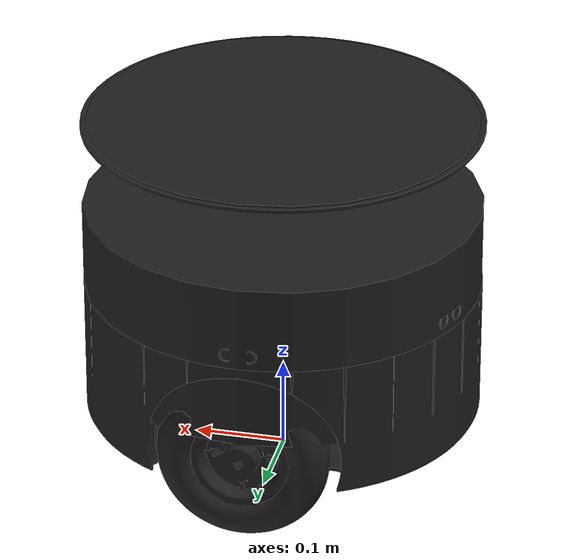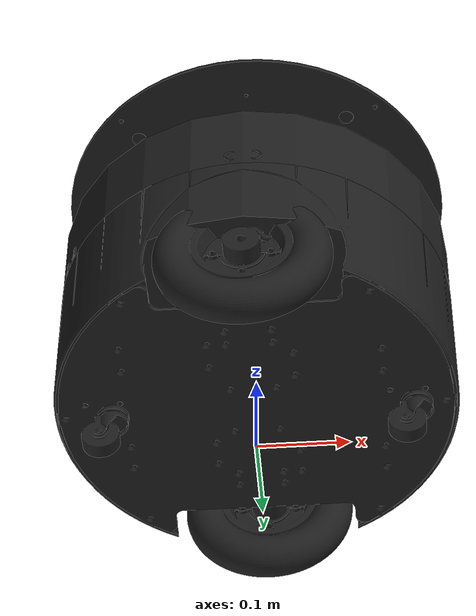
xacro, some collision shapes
<?xml version="1.0" ?>
<robot name="uvrobot_v3_restaurant" xmlns:xacro="http://ros.org/wiki/xacro">
  <xacro:include filename="$(find uvrobots_description)/urdf/uvrobot_v3.gazebo.xacro"/>

<!-- *** Link Definitions *** -->

  <!-- Base Footprint -->
  <link name="base_footprint"/>

  <!-- Base Link -->
  <joint name="base_joint" type="fixed">
    <parent link="base_footprint"/>
    <child link="base_link"/>
    <origin xyz="0.0 0.0 0.06" rpy="0 0 0"/>
  </joint>

  <link name="base_link">
    <inertial>
      <origin xyz="0 0 0" rpy="0 0 0"/>
      <mass value="1.28651"/>
      <inertia ixx="4.09876e-03" ixy="2.74202e-06" ixz="1.35022e-05"
               iyy="6.10042e-03" iyz="-5.46931e-06"
               izz="1.01978e-02" />
    </inertial>

    <collision>
      <origin xyz="0 0 0" rpy="0 0 0"/>
      <geometry>
        <cylinder radius="0.215" length="0.004"/>
      </geometry>
    </collision>

    <visual>
      <origin xyz="0 0 0" rpy="0 0 0"/>
      <geometry>
        <mesh filename="package://uvrobots_description/meshes/V3/Drivetrain_Plate.stl"  scale="0.001 0.001 0.001"/>
      </geometry>
      <material name="black"/>
    </visual>
  </link>

  <!-- Caster Back Wheel -->
  <joint name="caster_back_joint" type="fixed">
    <parent link="base_link"/>
    <child link="caster_back_link"/>
    <origin xyz="-0.165 0 -0.030" rpy="-1.5708 0 0"/>
  </joint>

  <link name="caster_back_link">
    <inertial>
      <origin xyz="0 0 0" />
      <mass value="0.09" />
      <inertia ixx="7.57929e-06" ixy="-1.2334e-13" ixz="-1.81974e-06"
               iyy="9.21232e-06" iyz="1.50542e-13"
               izz="4.83124e-06" />
    </inertial>

    <collision>
      <origin xyz="0 0 0" rpy="0 0 0"/>
      <geometry>
        <box size="0.059 0.059 0.059"/>
      </geometry>
    </collision>

    <visual>
      <origin xyz="0 0 0" rpy="0 0 0"/>
      <geometry>
        <mesh filename="package://uvrobots_description/meshes/V3/Castor_Wheel.stl"  scale="0.001 0.001 0.001"/>
      </geometry>
      <material name="black"/>
    </visual>
  </link>

  <!-- Caster Front Wheel -->
  <joint name="caster_front_joint" type="fixed">
    <parent link="base_link"/>
    <child link="caster_front_link"/>
    <origin xyz="0.165 0 -0.030" rpy="-1.5708 0 0"/>
  </joint>

  <link name="caster_front_link">
    <inertial>
      <origin xyz="0 0 0" />
      <mass value="0.09" />
      <inertia ixx="7.57929e-06" ixy="-1.2334e-13" ixz="-1.81974e-06"
               iyy="9.21232e-06" iyz="1.50542e-13"
               izz="4.83124e-06" />
    </inertial>

    <collision>
      <origin xyz="0 0 0" rpy="0 0 0"/>
      <geometry>
        <box size="0.059 0.059 0.059"/>
      </geometry>
    </collision>

    <visual>
      <origin xyz="0 0 0" rpy="0 0 0"/>
      <geometry>
        <mesh filename="package://uvrobots_description/meshes/V3/Castor_Wheel.stl"  scale="0.001 0.001 0.001"/>
      </geometry>
      <material name="black"/>
    </visual>
  </link>

  <!-- Wheel Left Joint -->
  <joint name="wheel_left_joint" type="continuous">
    <parent link="base_link"/>
    <child link="wheel_left_link"/>
    <origin xyz="0.0 0.190 0.032" rpy="-1.5708 0 0"/>
    <axis xyz="0 0 1"/>
  </joint>

  <link name="wheel_left_link">
    <inertial>
      <origin xyz="0 0 0" />
      <mass value="0.5" />
      <inertia ixx="1.25658e-03" ixy="2.3467e-14" ixz="6.91808e-16"
               iyy="2.28482e-03" iyz="-4.63769e-14"
               izz="1.25658e-03" />
    </inertial>

    <collision>
      <origin xyz="0 0 0" rpy="0 0 0"/>
      <geometry>
        <cylinder length="0.0482" radius="0.095"/>
      </geometry>
    </collision>

    <visual>
      <origin xyz="0 0 0" rpy="1.5708 0 0"/>
      <geometry>
        <mesh filename="package://uvrobots_description/meshes/V3/Left_Wheel.stl"  scale="0.001 0.001 0.001"/>
      </geometry>
      <material name="dark"/>
    </visual>
  </link>

  <!-- Wheel Right Joint -->
  <joint name="wheel_right_joint" type="continuous">
    <parent link="base_link"/>
    <child link="wheel_right_link"/>
    <origin xyz="0.0 -0.190 0.032" rpy="-1.5708 0 0"/>
    <axis xyz="0 0 1"/>
  </joint>

  <link name="wheel_right_link">
    <inertial>
      <origin xyz="0 0 0" />
      <mass value="0.5" />
      <inertia ixx="1.25658e-03" ixy="2.3467e-14" ixz="6.91808e-16"
               iyy="2.28482e-03" iyz="-4.63769e-14"
               izz="1.25658e-03" />
    </inertial>

    <collision>
      <origin xyz="0 0 0" rpy="0 0 0"/>
      <geometry>
        <cylinder length="0.0482" radius="0.095"/>
      </geometry>
    </collision>

    <visual>
      <origin xyz="0 0 0" rpy="1.5708 0 0"/>
      <geometry>
        <mesh filename="package://uvrobots_description/meshes/V3/Right_Wheel.stl"  scale="0.001 0.001 0.001"/>
      </geometry>
      <material name="dark"/>
    </visual>
  </link>

  <!-- Top Link -->
  <joint name="top_joint" type="fixed">
    <parent link="base_link"/>
    <child link="top_link"/>
    <origin xyz="0.0 0.0 0.149" rpy="0 0 0"/>
  </joint>

  <link name="top_link">
    <inertial>
      <origin xyz="0 0 0" rpy="0 0 0"/>
      <mass value="0.92649"/>
      <inertia ixx="6.3629e-03" ixy="3.26e-07" ixz="1.85614e-21"
               iyy="6.66864e-03" iyz="1.50542e-13"
               izz="4.83124e-06" />
    </inertial>

    <collision>
      <origin xyz="0 0 0" rpy="0 0 0"/>
      <geometry>
        <cylinder radius="0.215" length="0.004"/>
      </geometry>
    </collision>

    <visual>
      <origin xyz="0.00 0.00 0.00" rpy="0 0 0"/>
      <geometry>
        <mesh filename="package://uvrobots_description/meshes/V3/Electronic_Plate.stl"  scale="0.001 0.001 0.001"/>
      </geometry>
      <material name="black"/>
    </visual>
  </link>

  <!-- Base Skirt -->
  <joint name="base_skirt_joint" type="fixed">
    <parent link="base_link"/>
    <child link="base_skirt_link"/>
    <origin xyz="0.0 0.0 0.07645" rpy="0 0 0"/>
  </joint>

  <link name="base_skirt_link">
    <inertial>
      <origin xyz="0 0 0" rpy="0 0 0"/>
      <mass value="0.25"/>
      <inertia ixx="1.94954e-04" ixy="6.66951e-02" ixz="-1.07234e-02"
               iyy="2.27484e+1" iyz="3.07002e-05"
               izz="2.27486e+1" />
    </inertial>

    <collision>
      <origin xyz="0 0 0" rpy="0 0 0"/>
      <geometry>
        <cylinder radius="0.220" length="0.153"/>
      </geometry>
    </collision>

    <visual>
      <origin xyz="0 0 0" rpy="0 0 0"/>
      <geometry>
        <mesh filename="package://uvrobots_description/meshes/V3/Drivetrain_Skirt.stl"  scale="0.001 0.001 0.001"/>
      </geometry>
      <material name="black"/>
    </visual>
  </link>

  <!-- IMU -->
  <joint name="imu_joint" type="fixed">
    <parent link="base_link"/>
    <child link="imu_base"/>
    <!--origin xyz="-0.032 0 0.068" rpy="0 0 0"/-->
    <origin xyz="0.1076 0.0 0.2432" rpy="0 0 0"/>
  </joint>

  <link name="imu_base"/>

  <!-- Realsense D455 Camera Link -->
  <joint name="camera_joint" type="fixed">
    <parent link="base_link"/>
    <child link="camera_link"/>
    <origin xyz="0.198 0.0 0.2035" rpy="0 0 0"/>
  </joint>

  <link name="camera_link">
    <inertial>
      <origin xyz="0 0 0" />
      <mass value="0.72" />
      <inertia ixx="9.86959e-05" ixy="1.1973e-07" ixz="-7.99621e-07"
               iyy="9.2973e-06" iyz="1.12977e-08"
               izz="9.81244e-05" />
    </inertial>

    <collision>
      <origin xyz="0 0 0" rpy="0 0 0"/>
      <geometry>
        <box size="0.029 0.124 0.026"/>
      </geometry>
    </collision>

    <visual>
      <origin xyz="-0.005 0 -0.0015" rpy="0 0 0"/>
      <geometry>
        <mesh filename="package://uvrobots_description/meshes/V3/Sensors/INTEL_REALSENSE_D455.STL"  scale="0.001 0.001 0.001"/>
      </geometry>
      <material name="black"/>
    </visual>
  </link>

  <joint name="camera_rgb_joint" type="fixed">
    <origin xyz="0.0 -0.02 0.0" rpy="0.0 0.0 0.0"/>
    <parent link="camera_link"/>
    <child link="camera_rgb_frame" />
  </joint>

  <link name="camera_rgb_frame"/>

  <joint name="camera_rgb_optical_joint" type="fixed">
    <origin xyz="0 0 0" rpy="-1.57079632679 0 -1.57079632679" />
    <parent link="camera_rgb_frame" />
    <child link="camera_rgb_optical_frame" />
  </joint>

  <link name="camera_rgb_optical_frame"/>

  <joint name="camera_depth_joint" type="fixed">
    <origin xyz="0 -0.045 0" rpy="0 0 0" />
    <parent link="camera_link" />
    <child link="camera_depth_frame" />
  </joint>

  <link name="camera_depth_frame"/>

  <joint name="camera_depth_optical_joint" type="fixed">
    <origin xyz="0 0 0" rpy="-1.57079632679 0 -1.57079632679" />
    <parent link="camera_depth_frame" />
    <child link="camera_depth_optical_frame" />
  </joint>

  <link name="camera_depth_optical_frame"/>

  <joint name="camera_optical_joint" type="fixed">
  <!-- these values have to be these values otherwise the gazebo camera
      image won't be aligned properly with the frame it is supposedly
      originating from -->
    <origin xyz="0 0 0" rpy="-1.57079632679 0 -1.57079632679"/>
    <parent link="camera_link"/>
    <child link="camera_link_optical"/>
  </joint>

  <link name="camera_link_optical"/>

  <!-- YDLIDAR G4 Scan -->
  <joint name="scan_joint" type="fixed">
    <parent link="base_link"/>
    <child link="base_scan"/>
    <origin xyz="0.140 0 0.281" rpy="0 0 0"/>
  </joint>

  <link name="base_scan">
    <inertial>
      <mass value="0.114" />
      <origin xyz="0 0 0" rpy="0 0 0"/>
      <inertia ixx="0.001" ixy="0.0" ixz="0.0"
               iyy="0.001" iyz="0.0"
               izz="0.001" />
    </inertial>

    <collision>
      <origin xyz="0 0 0" rpy="0 0 0"/>
      <geometry>
        <cylinder length="0.0425" radius="0.03685"/>
      </geometry>
    </collision>

    <visual>
      <origin xyz="0.0 0.0 0.0" rpy="0.0 0.0 0.0"/>
      <geometry>
        <mesh filename="package://uvrobots_description/meshes/V3/Sensors/YDLidar_G2.stl"  scale="0.001 0.001 0.001"/>
      </geometry>
      <material name="dark"/>
    </visual>
  </link>

  <!-- Ultrasonic Sensor -->
  <joint name="base_ir_right1_joint" type="fixed">
    <parent link="base_link"/>
    <child link="base_ir_right1"/>
    <origin xyz="0 -0.205 0.165" rpy="3.14159 0 -1.5708"/>
  </joint>

  <link name="base_ir_right1">
    <inertial>
      <mass value="1e-5" />
      <origin xyz="0 0 0" rpy="0 0 0"/>
      <inertia ixx="1e-6" ixy="0" ixz="0"
        iyy="1e-6" iyz="0"
        izz="1e-6" />
    </inertial>

    <collision>
      <origin xyz="0 0 0" rpy="0 0 0"/>
      <geometry>
        <box size="0.045 0.02 0.0135"/>
      </geometry>
    </collision>

    <visual>
      <origin xyz="0.0 0.0 0.0" rpy="0.0 0 0.0"/>
      <geometry>
        <mesh filename="package://uvrobots_description/meshes/V3/Sensors/HC-SR04.stl"  scale="0.001 0.001 0.001"/>
      </geometry>
      <material name="dark"/>
    </visual>
  </link>

  <joint name="base_ir_right2_joint" type="fixed">
    <parent link="base_link"/>
    <child link="base_ir_right2"/>
    <origin xyz="-0.190 -0.078 0.165" rpy="3.14159 0.0 -2.75"/>
  </joint>

  <link name="base_ir_right2">
    <inertial>
      <mass value="1e-5" />
      <origin xyz="0 0 0" rpy="0 0 0"/>
      <inertia ixx="1e-6" ixy="0" ixz="0"
        iyy="1e-6" iyz="0"
        izz="1e-6" />
    </inertial>

    <collision>
      <origin xyz="0 0 0" rpy="0 0 0"/>
      <geometry>
        <box size="0.045 0.02 0.0135"/>
      </geometry>
    </collision>

    <visual>
      <origin xyz="0.0 0.0 0.0" rpy="0.0 0.0 0.0"/>
      <geometry>
        <mesh filename="package://uvrobots_description/meshes/V3/Sensors/HC-SR04.stl"  scale="0.001 0.001 0.001"/>
      </geometry>
      <material name="dark"/>
    </visual>
  </link>

  <joint name="base_ir_left1_joint" type="fixed">
    <parent link="base_link"/>
    <child link="base_ir_left1"/>
    <origin xyz="0 0.205 0.165" rpy="3.14159 0 1.5708"/>
  </joint>

  <link name="base_ir_left1">
    <inertial>
      <mass value="1e-5" />
      <origin xyz="0 0 0" rpy="0 0 0"/>
      <inertia ixx="1e-6" ixy="0" ixz="0"
        iyy="1e-6" iyz="0"
        izz="1e-6" />
    </inertial>

    <collision>
      <origin xyz="0 0 0" rpy="0 0 0"/>
      <geometry>
        <box size="0.045 0.02 0.0135"/>
      </geometry>
    </collision>

    <visual>
      <origin xyz="0.0 0.0 0.0" rpy="0.0 0.0 0.0"/>
      <geometry>
        <mesh filename="package://uvrobots_description/meshes/V3/Sensors/HC-SR04.stl"  scale="0.001 0.001 0.001"/>
      </geometry>
      <material name="dark"/>
    </visual>
  </link>

  <joint name="base_ir_left2_joint" type="fixed">
    <parent link="base_link"/>
    <child link="base_ir_left2"/>
    <origin xyz="-0.190 0.078 0.165" rpy="3.14159 0.0 2.75"/>
  </joint>

  <link name="base_ir_left2">
    <inertial>
      <mass value="1e-5" />
      <origin xyz="0 0 0" rpy="0 0 0"/>
      <inertia ixx="1e-6" ixy="0" ixz="0"
        iyy="1e-6" iyz="0"
        izz="1e-6" />
    </inertial>

    <collision>
      <origin xyz="0 0 0" rpy="0 0 0"/>
      <geometry>
        <box size="0.045 0.02 0.0135"/>
      </geometry>
    </collision>

    <visual>
      <origin xyz="0.0 0.0 0.0" rpy="0.0 0.0 0.0"/>
      <geometry>
        <mesh filename="package://uvrobots_description/meshes/V3/Sensors/HC-SR04.stl"  scale="0.001 0.001 0.001"/>
      </geometry>
      <material name="dark"/>
    </visual>
  </link>

  <!-- Top Skirt -->
  <joint name="top_skirt_joint" type="fixed">
    <parent link="base_link"/>
    <child link="top_skirt_link"/>
    <origin xyz="0.0 0.0 0.151" rpy="0 0 0"/>
  </joint>

  <link name="top_skirt_link">
    <inertial>
      <origin xyz="0 0 0" rpy="0 0 0"/>
      <mass value="0.37"/>
      <inertia ixx="7.6943e-02" ixy="4.24102e-03" ixz="-1.39489e-03"
               iyy="-3.13302e-02" iyz="-1.10959e-04"
               izz="3.45636e-02" />
    </inertial>

    <collision>
      <origin xyz="0 0 0" rpy="0 0 0"/>
      <geometry>
        <cylinder radius="0.220" length="0.185"/>
      </geometry>
    </collision>

    <visual>
      <origin xyz="0.0 0.0 0.0" rpy="0 0 0"/>
      <geometry>
        <mesh filename="package://uvrobots_description/meshes/V3/Electronic_Skirt.stl"  scale="0.001 0.001 0.001"/>
      </geometry>
      <material name="black"/>
    </visual>
  </link>

  <!-- Modular Link -->
  <joint name="modular_joint" type="fixed">
    <parent link="base_link"/>
    <child link="modular_link"/>
    <origin xyz="0.0 0.0 0.338" rpy="0 0 0"/>
  </joint>

  <link name="modular_link">
    <inertial>
      <origin xyz="0 0 0" rpy="0 0 0"/>
      <mass value="0.92649"/>
      <inertia ixx="6.3629e-03" ixy="3.26e-07" ixz="1.85614e-21"
               iyy="6.66864e-03" iyz="1.50542e-13"
               izz="4.83124e-06" />
    </inertial>

    <collision>
      <origin xyz="0 0 0" rpy="0 0 0"/>
      <geometry>
        <cylinder radius="0.215" length="0.004"/>
      </geometry>
    </collision>

    <visual>
      <origin xyz="0.0 0.0 0.0" rpy="0 0 0"/>
      <geometry>
        <mesh filename="package://uvrobots_description/meshes/V3/Modular_Plate.stl"  scale="0.001 0.001 0.001"/>
      </geometry>
      <material name="black"/>
    </visual>
  </link>

	<!-- Restaurant Model Model -->
  <joint name="rest_base_joint" type="fixed">
    <parent link="modular_link"/>
    <child link="rest_base_link"/>
    <origin xyz="0.0 0.0 0.002" rpy="0 0 0"/>
  </joint>

  <link name="rest_base_link">
    <inertial>
      <origin xyz="0 0 0" rpy="0 0 0"/>
			<mass value="1.0"/>
			<inertia ixx="6.35262e-03" ixy="5.92227e-07" ixz="-1.11331e-09"
               iyy="6.05308e-03" iyz="-1.25024e-11"
               izz="1.24042e-02" />
		</inertial>

		<collision>
			<origin xyz="0 0 0" rpy="0 0 0"/>
			<geometry>
				<cylinder radius="0.215" length="0.004"/>
			</geometry>
		</collision>

		<visual>
			<origin xyz="0.0 0.0 0.0" rpy="0 0 0"/>
			<geometry>
				<mesh filename="package://uvrobots_description/meshes/V3/Restaurant_Module.stl"  scale="0.001 0.001 0.001"/>
			</geometry>
			<material name="black"/>
		</visual>
	</link>

  <!-- V3 Simulated Sensors -->
  <joint name="sim_ir_right1_joint" type="fixed">
    <parent link="base_ir_right1"/>
    <child link="sim_ir_right1"/>
    <origin xyz="0 0 0" rpy="0 0 0"/>
  </joint>

  <link name="sim_ir_right1"/>

  <joint name="sim_ir_right2_joint" type="fixed">
    <parent link="base_ir_right2"/>
    <child link="sim_ir_right2"/>
    <origin xyz="0 0 0" rpy="0 0 0"/>
  </joint>

  <link name="sim_ir_right2"/>

  <joint name="sim_ir_left1_joint" type="fixed">
    <parent link="base_ir_left1"/>
    <child link="sim_ir_left1"/>
    <origin xyz="0 0 0" rpy="0 0 0"/>
  </joint>

  <link name="sim_ir_left1"/>

  <joint name="sim_ir_left2_joint" type="fixed">
    <parent link="base_ir_left2"/>
    <child link="sim_ir_left2"/>
    <origin xyz="0 0 0" rpy="0 0 0"/>
  </joint>

  <link name="sim_ir_left2"/>

  <joint name="sim_joint" type="fixed">
    <parent link="base_scan"/>
    <child link="sim_scan"/>
    <origin xyz="0 0 0.037" rpy="0 0 0"/>
  </joint>

  <link name="sim_scan"/>
</robot>
